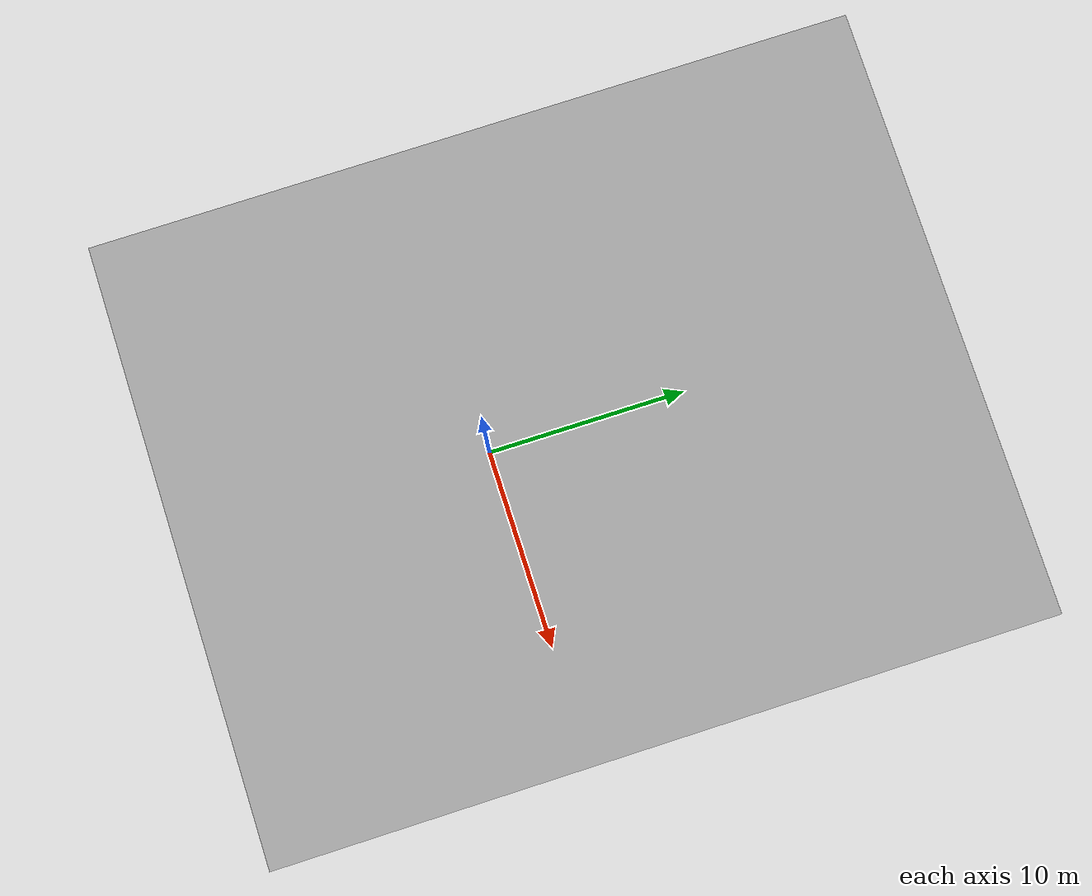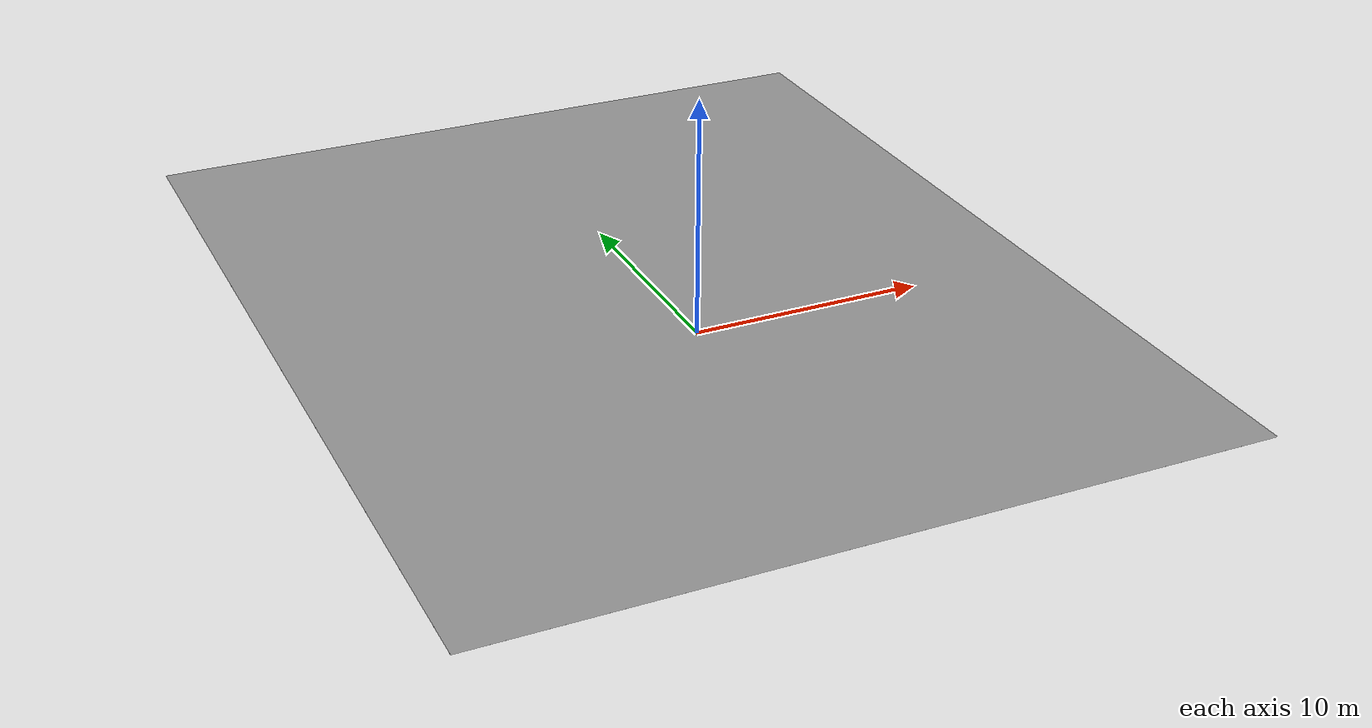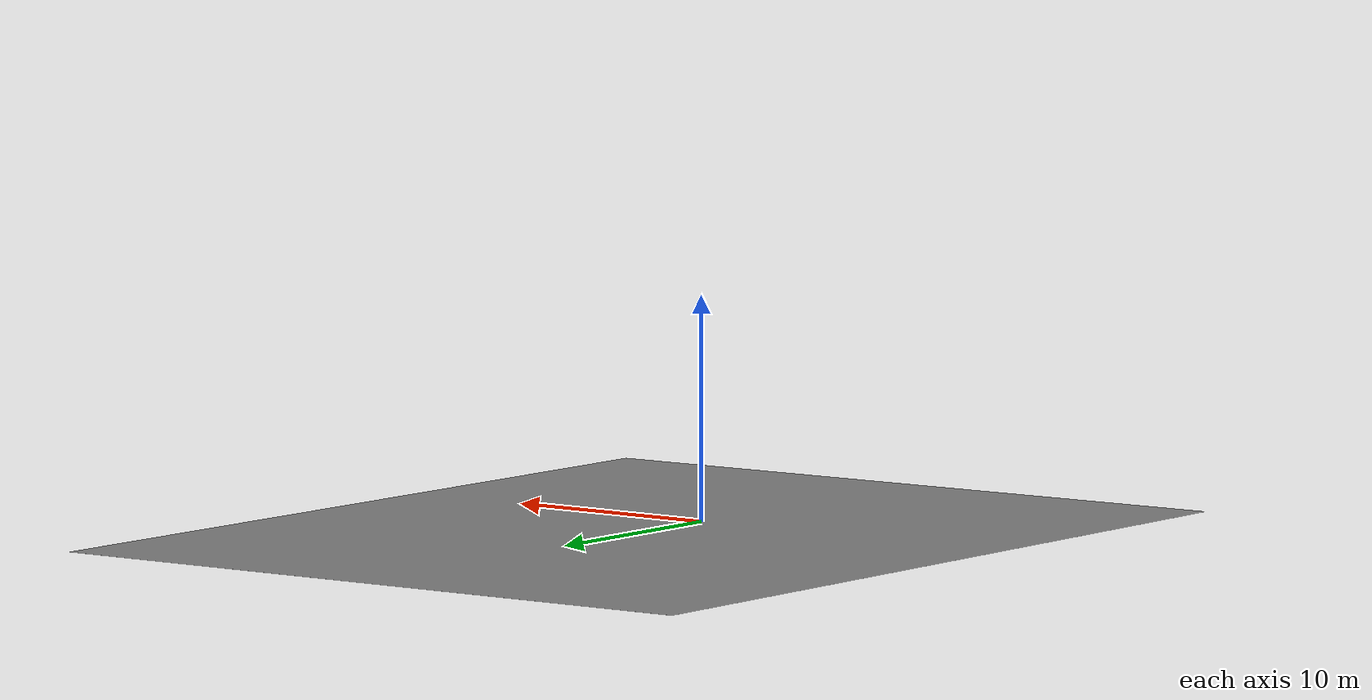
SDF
<?xml version='1.0'?>
<sdf version='1.7'>
  <model name='blackfloor'>
    <pose>0 4 0 0 -0 0</pose>
    <link name='Wall_0'>
      <collision name='Wall_0_Collision'>
        <geometry>
          <box>
            <size>40 32 0.001</size>
          </box>
        </geometry>
        <pose>0 0 0.0005 0 -0 0</pose>
      </collision>
      <visual name='Wall_0_Visual'>
        <pose>0 0 0.0005 0 -0 0</pose>
        <geometry>
          <box>
            <size>40 32 0.001</size>
          </box>
        </geometry>
        <material>
          <script>
            <uri>file://media/materials/scripts/gazebo.material</uri>
            <name>Gazebo/Grey</name>
          </script>
          <ambient>0 0 0 1</ambient>
        </material>
        <meta>
          <layer>0</layer>
        </meta>
      </visual>
      <pose>0 0 0 0 -0 1.5708</pose>
    </link>
    <static>1</static>
  </model>
</sdf>
